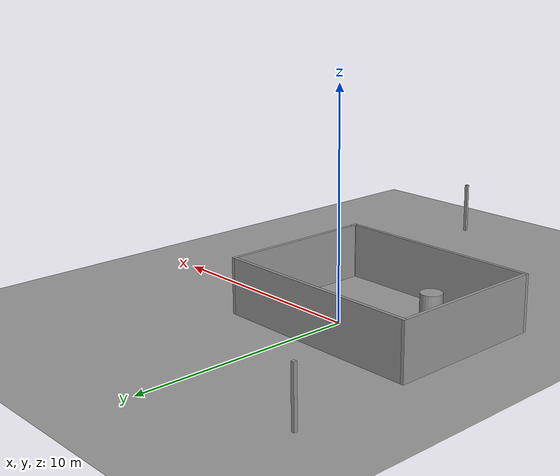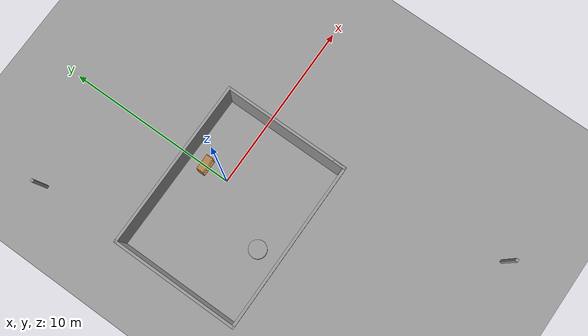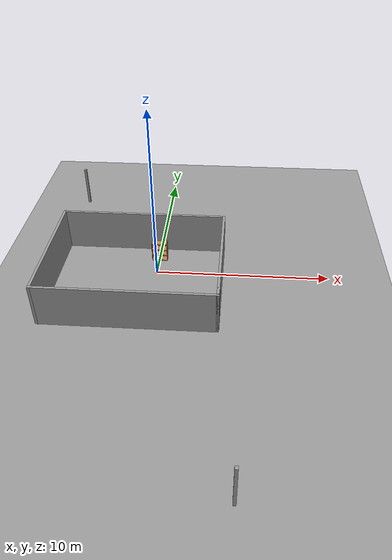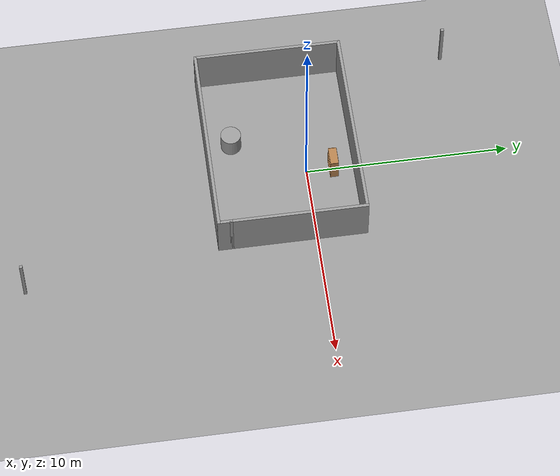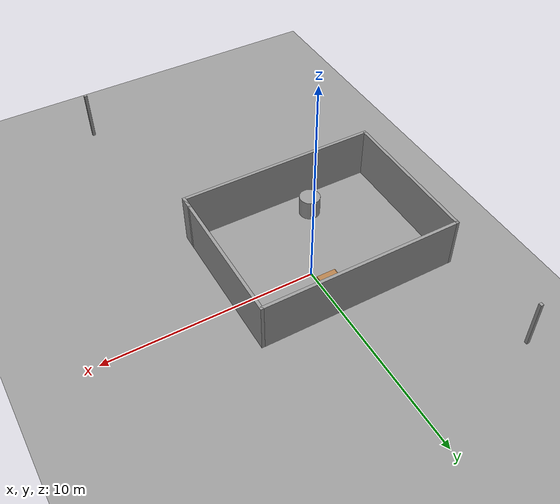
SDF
<sdf version="1.6">
 <world name="default">
  <light name="sun" type="directional">
   <pose>0 0 10 0 -0 0</pose>
   <diffuse>0.8 0.8 0.8 1</diffuse>
   <specular>0.2 0.2 0.2 1</specular>
   <attenuation>
    <range>1000</range>
    <constant>0.9</constant>
    <linear>0.01</linear>
    <quadratic>0.001</quadratic>
   </attenuation>
   <direction>0.5 0.1 -0.9</direction>
  </light>
  <scene><ambient>0.4 0.4 0.4 1</ambient><background>0.7 0.7 0.7 1</background><shadows>1</shadows></scene>
  <physics name="default_physics" default="0" type="ode">
   <max_step_size>0.01</max_step_size>
   <real_time_factor>1</real_time_factor>
   <real_time_update_rate>100</real_time_update_rate>
  </physics>
  <model name="bookshelf">
   <static>1</static>
   <link name="link">
    <inertial><mass>1</mass></inertial>
    <collision name="back">
     <pose>0 0.005 0.6 0 -0 0</pose>
     <geometry><box><size>0.9 0.01 1.2</size></box></geometry>
    </collision>
    <visual name="visual1">
     <pose>0 0.005 0.6 0 -0 0</pose>
     <geometry><box><size>0.9 0.01 1.2</size></box></geometry>
     <material>
      <script><uri>file://media/materials/scripts/gazebo.material</uri><name>Gazebo/Wood</name></script>
     </material>
    </visual>
    <collision name="left_side">
     <pose>0.45 -0.195 0.6 0 -0 0</pose>
     <geometry><box><size>0.02 0.4 1.2</size></box></geometry>
    </collision>
    <visual name="visual2">
     <pose>0.45 -0.195 0.6 0 -0 0</pose>
     <geometry><box><size>0.02 0.4 1.2</size></box></geometry>
     <material>
      <script><uri>file://media/materials/scripts/gazebo.material</uri><name>Gazebo/Wood</name></script>
     </material>
    </visual>
    <collision name="right_side">
     <pose>-0.45 -0.195 0.6 0 -0 0</pose>
     <geometry><box><size>0.02 0.4 1.2</size></box></geometry>
    </collision>
    <visual name="visual3">
     <pose>-0.45 -0.195 0.6 0 -0 0</pose>
     <geometry><box><size>0.02 0.4 1.2</size></box></geometry>
     <material>
      <script><uri>file://media/materials/scripts/gazebo.material</uri><name>Gazebo/Wood</name></script>
     </material>
    </visual>
    <collision name="bottom">
     <pose>0 -0.195 0.03 0 -0 0</pose>
     <geometry><box><size>0.88 0.4 0.06</size></box></geometry>
    </collision>
    <visual name="visual4">
     <pose>0 -0.195 0.03 0 -0 0</pose>
     <geometry><box><size>0.88 0.4 0.06</size></box></geometry>
     <material>
      <script><uri>file://media/materials/scripts/gazebo.material</uri><name>Gazebo/Wood</name></script>
     </material>
    </visual>
    <collision name="top">
     <pose>0 -0.195 1.19 0 -0 0</pose>
     <geometry><box><size>0.88 0.4 0.02</size></box></geometry>
    </collision>
    <visual name="visual5">
     <pose>0 -0.195 1.19 0 -0 0</pose>
     <geometry><box><size>0.88 0.4 0.02</size></box></geometry>
     <material>
      <script><uri>file://media/materials/scripts/gazebo.material</uri><name>Gazebo/Wood</name></script>
     </material>
    </visual>
    <collision name="low_shelf">
     <pose>0 -0.195 0.43 0 -0 0</pose>
     <geometry><box><size>0.88 0.4 0.02</size></box></geometry>
    </collision>
    <visual name="visual6">
     <pose>0 -0.195 0.43 0 -0 0</pose>
     <geometry><box><size>0.88 0.4 0.02</size></box></geometry>
     <material>
      <script><uri>file://media/materials/scripts/gazebo.material</uri><name>Gazebo/Wood</name></script>
     </material>
    </visual>
    <collision name="high_shelf">
     <pose>0 -0.195 0.8 0 -0 0</pose>
     <geometry><box><size>0.88 0.4 0.02</size></box></geometry>
    </collision>
    <visual name="visual7">
     <pose>0 -0.195 0.8 0 -0 0</pose>
     <geometry><box><size>0.88 0.4 0.02</size></box></geometry>
     <material>
      <script><uri>file://media/materials/scripts/gazebo.material</uri><name>Gazebo/Wood</name></script>
     </material>
    </visual>
    <velocity_decay><linear>0</linear><angular>0</angular></velocity_decay>
   </link>
   <pose>0 1.53026 0 0 -0 0</pose>
  </model>
  <model name="ground_plane_0">
   <static>1</static>
   <link name="link">
    <collision name="collision">
     <geometry><plane><normal>0 0 1</normal><size>100 100</size></plane></geometry>
     <surface><friction><ode><mu>100</mu><mu2>50</mu2></ode></friction></surface>
    </collision>
    <visual name="visual">
     <cast_shadows>0</cast_shadows>
     <geometry><plane><normal>0 0 1</normal><size>100 100</size></plane></geometry>
     <material>
      <script><uri>file://media/materials/scripts/gazebo.material</uri><name>Gazebo/Grey</name></script>
     </material>
    </visual>
    <velocity_decay><linear>0</linear><angular>0</angular></velocity_decay>
   </link>
   <pose>0.497681 0 0 0 -0 0</pose>
  </model>
  <model name="unit_cylinder_1">
   <pose>-2 -3.4888 0.49912 0 -0 0</pose>
   <link name="link">
    <inertial>
     <mass>1</mass>
     <inertia><ixx>1</ixx><ixy>0</ixy><ixz>0</ixz><iyy>1</iyy><iyz>0</iyz><izz>1</izz></inertia>
    </inertial>
    <collision name="collision">
     <geometry><cylinder><radius>0.5</radius><length>1</length></cylinder></geometry>
    </collision>
    <visual name="visual">
     <geometry><cylinder><radius>0.5</radius><length>1</length></cylinder></geometry>
     <material>
      <script><uri>file://media/materials/scripts/gazebo.material</uri><name>Gazebo/Grey</name></script>
     </material>
    </visual>
    <velocity_decay><linear>0</linear><angular>0</angular></velocity_decay>
   </link>
   <static>0</static>
  </model>
  <gravity>0 0 -9.8</gravity>
  <magnetic_field>6e-06 2.3e-05 -4.2e-05</magnetic_field>
  <atmosphere type="adiabatic"/>
  <spherical_coordinates>
   <surface_model>EARTH_WGS84</surface_model>
   <latitude_deg>0</latitude_deg>
   <longitude_deg>0</longitude_deg>
   <elevation>0</elevation>
   <heading_deg>0</heading_deg>
  </spherical_coordinates>
  <model name="turtlebot_world">
   <pose>-0.435343 -3.30767 0 0 -0 0</pose>
   <link name="Wall_11">
    <collision name="Wall_11_Collision">
     <geometry><box><size>9.75 0.15 2.5</size></box></geometry>
     <pose>0 0 1.25 0 -0 0</pose>
    </collision>
    <visual name="Wall_11_Visual">
     <pose>0 0 1.25 0 -0 0</pose>
     <geometry><box><size>9.75 0.15 2.5</size></box></geometry>
     <material>
      <script><uri>file://media/materials/scripts/gazebo.material</uri><name>Gazebo/Grey</name></script>
      <ambient>1 1 1 1</ambient>
     </material>
    </visual>
    <pose>-0.573303 -1.44702 0 0 -0 0</pose>
   </link>
   <link name="Wall_12">
    <collision name="Wall_12_Collision">
     <geometry><box><size>0.75 0.15 2.5</size></box></geometry>
     <pose>0 0 1.25 0 -0 0</pose>
    </collision>
    <visual name="Wall_12_Visual">
     <pose>0 0 1.25 0 -0 0</pose>
     <geometry><box><size>0.75 0.15 2.5</size></box></geometry>
     <material>
      <script><uri>file://media/materials/scripts/gazebo.material</uri><name>Gazebo/Grey</name></script>
      <ambient>1 1 1 1</ambient>
     </material>
    </visual>
    <pose>4.2267 -1.14702 0 0 -0 1.5708</pose>
   </link>
   <link name="Wall_13">
    <collision name="Wall_13_Collision">
     <geometry><box><size>0.15 0.15 2.5</size></box></geometry>
     <pose>0 0 1.25 0 -0 0</pose>
    </collision>
    <visual name="Wall_13_Visual">
     <pose>0 0 1.25 0 -0 0</pose>
     <geometry><box><size>0.15 0.15 2.5</size></box></geometry>
     <material>
      <script><uri>file://media/materials/scripts/gazebo.material</uri><name>Gazebo/Grey</name></script>
      <ambient>1 1 1 1</ambient>
     </material>
    </visual>
    <pose>4.2267 -0.847022 0 0 -0 0</pose>
   </link>
   <link name="Wall_14">
    <collision name="Wall_14_Collision">
     <geometry><box><size>0.15 0.15 2.5</size></box></geometry>
     <pose>0 0 1.25 0 -0 0</pose>
    </collision>
    <visual name="Wall_14_Visual">
     <pose>0 0 1.25 0 -0 0</pose>
     <geometry><box><size>0.15 0.15 2.5</size></box></geometry>
     <material>
      <script><uri>file://media/materials/scripts/gazebo.material</uri><name>Gazebo/Grey</name></script>
      <ambient>1 1 1 1</ambient>
     </material>
    </visual>
    <pose>4.2267 -0.847022 0 0 -0 0</pose>
   </link>
   <link name="Wall_2">
    <collision name="Wall_2_Collision">
     <geometry><box><size>0.15 0.15 2.5</size></box></geometry>
     <pose>0 0 1.25 0 -0 0</pose>
    </collision>
    <visual name="Wall_2_Visual">
     <pose>0 0 1.25 0 -0 0</pose>
     <geometry><box><size>0.15 0.15 2.5</size></box></geometry>
     <material>
      <script><uri>file://media/materials/scripts/gazebo.material</uri><name>Gazebo/Grey</name></script>
      <ambient>1 1 1 1</ambient>
     </material>
    </visual>
    <pose>-5.3733 10.9645 0 0 -0 0</pose>
   </link>
   <link name="Wall_4">
    <collision name="Wall_4_Collision">
     <geometry><box><size>7.31153 0.15 2.5</size></box></geometry>
     <pose>0 0 1.25 0 -0 0</pose>
    </collision>
    <visual name="Wall_4_Visual">
     <pose>0 0 1.25 0 -0 0</pose>
     <geometry><box><size>7.31153 0.15 2.5</size></box></geometry>
     <material>
      <script><uri>file://media/materials/scripts/gazebo.material</uri><name>Gazebo/Grey</name></script>
      <ambient>1 1 1 1</ambient>
     </material>
    </visual>
    <pose>-5.3733 2.13374 0 0 -0 1.5708</pose>
   </link>
   <link name="Wall_5">
    <collision name="Wall_5_Collision">
     <geometry><box><size>9.75 0.15 2.5</size></box></geometry>
     <pose>0 0 1.25 0 -0 0</pose>
    </collision>
    <visual name="Wall_5_Visual">
     <pose>0 0 1.25 0 -0 0</pose>
     <geometry><box><size>9.75 0.15 2.5</size></box></geometry>
     <material>
      <script><uri>file://media/materials/scripts/gazebo.material</uri><name>Gazebo/Grey</name></script>
      <ambient>1 1 1 1</ambient>
     </material>
    </visual>
    <pose>-0.573303 5.7145 0 0 -0 0</pose>
   </link>
   <link name="Wall_6">
    <collision name="Wall_6_Collision">
     <geometry><box><size>7.12306 0.15 2.5</size></box></geometry>
     <pose>0 0 1.25 0 -0 0</pose>
    </collision>
    <visual name="Wall_6_Visual">
     <pose>0 0 1.25 0 -0 0</pose>
     <geometry><box><size>7.12306 0.15 2.5</size></box></geometry>
     <material>
      <script><uri>file://media/materials/scripts/gazebo.material</uri><name>Gazebo/Grey</name></script>
      <ambient>1 1 1 1</ambient>
     </material>
    </visual>
    <pose>4.2267 2.22798 0 0 0 -1.5708</pose>
   </link>
   <link name="Wall_9">
    <collision name="Wall_9_Collision">
     <geometry><box><size>0.15 0.15 2.5</size></box></geometry>
     <pose>0 0 1.25 0 -0 0</pose>
    </collision>
    <visual name="Wall_9_Visual">
     <pose>0 0 1.25 0 -0 0</pose>
     <geometry><box><size>0.15 0.15 2.5</size></box></geometry>
     <material>
      <script><uri>file://media/materials/scripts/gazebo.material</uri><name>Gazebo/Grey</name></script>
      <ambient>1 1 1 1</ambient>
     </material>
    </visual>
    <pose>5.3733 -10.9645 0 0 -0 0</pose>
   </link>
   <static>1</static>
  </model>
 </world>
</sdf>
